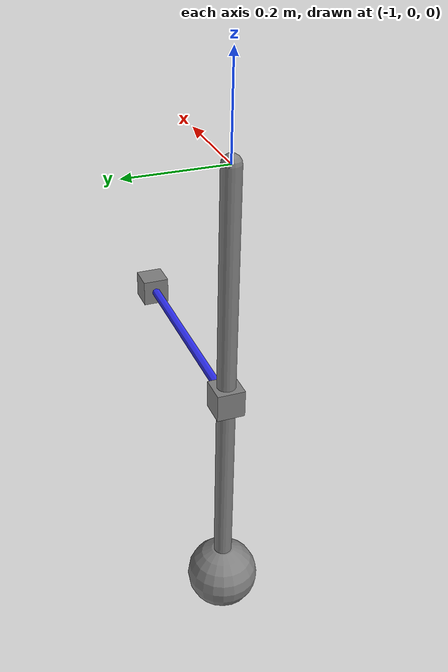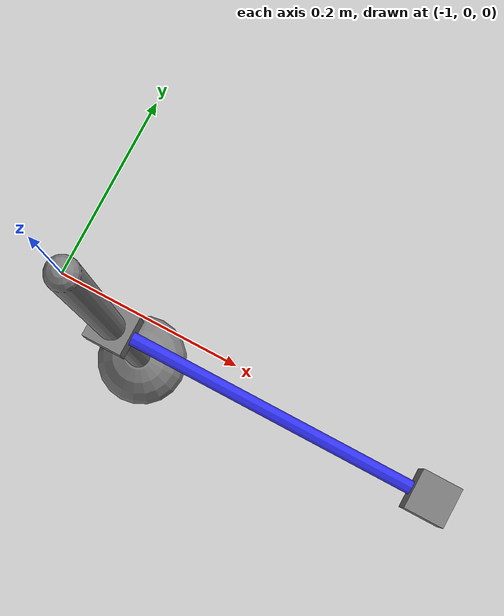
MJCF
<mujoco>
  <option integrator="RK4">
    <flag energy="enable"/>
  </option>

  <worldbody>
    <site name="tendon" type="box" size=".03 .03 .03" pos="-.5 0 -.5"/>
    <body name="link1" pos="-1 0 0">
      <joint name="link1" axis="0 -1 0" stiffness="100" springref="90"/>
      <geom type="capsule" size=".02" fromto="0 0 0 0 0 -1"/>
      <geom type="sphere" size=".08" pos="0 0 -1"/>
      <site name="link1" type="box" size=".03 .03 .03" pos="0 0 -.5"/>
    </body>
  </worldbody>

  <tendon>
    <spatial width=".01" rgba=".2 .2 1 1">
      <site site="link1"/>
      <site site="tendon"/>
    </spatial>
  </tendon>

  <keyframe>
    <key qpos="1" qvel="1"/>
  </keyframe>
</mujoco>
